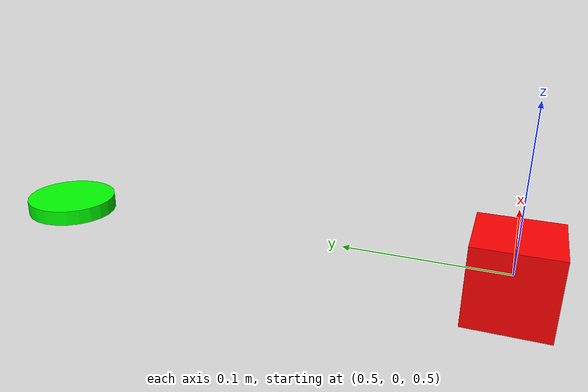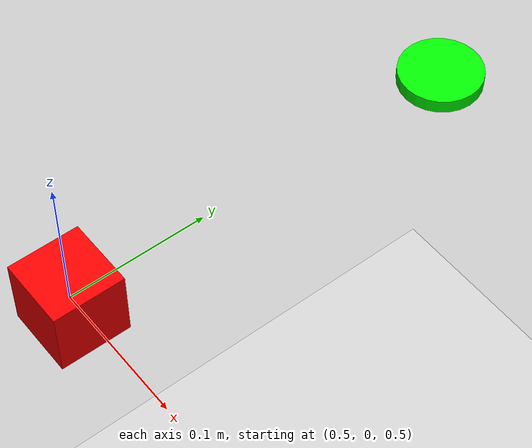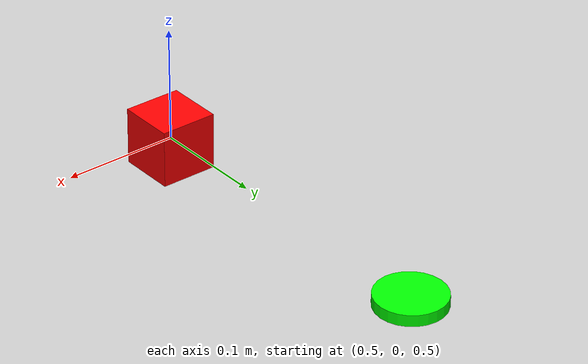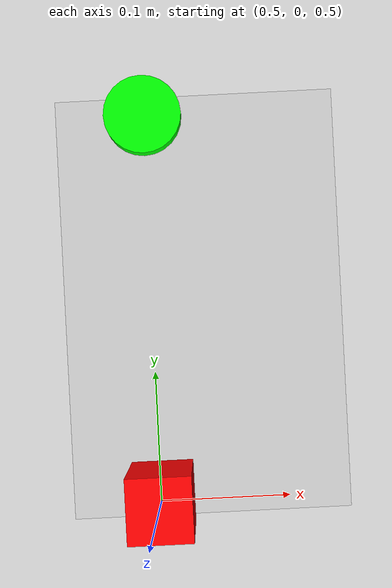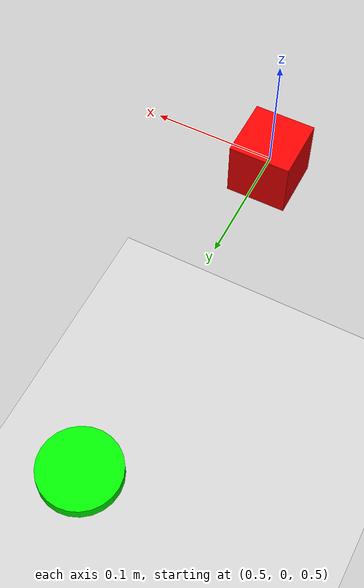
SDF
<?xml version="1.0"?>
<sdf version="1.6">
  <world name="pick_and_place_world">

    <!-- Physics -->
    <physics name="1ms" type="ignored">
      <max_step_size>0.001</max_step_size>
      <real_time_factor>1.0</real_time_factor>
    </physics>

    <!-- Lighting -->
    <light type="directional" name="sun">
      <cast_shadows>true</cast_shadows>
      <pose>0 0 10 0 0 0</pose>
      <diffuse>0.8 0.8 0.8 1</diffuse>
      <specular>0.2 0.2 0.2 1</specular>
      <direction>-0.5 0.1 -0.9</direction>
    </light>

    <!-- Ground plane -->
    <model name="ground_plane">
      <static>true</static>
      <link name="link">
        <collision name="collision">
          <geometry>
            <plane>
              <normal>0 0 1</normal>
              <size>100 100</size>
            </plane>
          </geometry>
        </collision>
        <visual name="visual">
          <geometry>
            <plane>
              <normal>0 0 1</normal>
              <size>100 100</size>
            </plane>
          </geometry>
          <material>
            <ambient>0.8 0.8 0.8 1</ambient>
            <diffuse>0.8 0.8 0.8 1</diffuse>
          </material>
        </visual>
      </link>
    </model>

    <!-- Simple cube to pick -->
    <model name="cube">
      <pose>0.5 0 0.5 0 0 0</pose>
      <link name="link">
        <collision name="collision">
          <geometry>
            <box>
              <size>0.05 0.05 0.05</size>
            </box>
          </geometry>
        </collision>
        <visual name="visual">
          <geometry>
            <box>
              <size>0.05 0.05 0.05</size>
            </box>
          </geometry>
          <material>
            <ambient>1 0 0 1</ambient>
            <diffuse>1 0 0 1</diffuse>
          </material>
        </visual>
        <inertial>
          <mass>0.1</mass>
          <inertia>
            <ixx>0.000017</ixx>
            <ixy>0</ixy>
            <ixz>0</ixz>
            <iyy>0.000017</iyy>
            <iyz>0</iyz>
            <izz>0.000017</izz>
          </inertia>
        </inertial>
      </link>
    </model>

    <!-- Target position marker -->
    <model name="target">
      <pose>0.5 0.3 0.5 0 0 0</pose>
      <static>true</static>
      <link name="link">
        <visual name="visual">
          <geometry>
            <cylinder>
              <radius>0.03</radius>
              <length>0.01</length>
            </cylinder>
          </geometry>
          <material>
            <ambient>0 1 0 1</ambient>
            <diffuse>0 1 0 1</diffuse>
          </material>
        </visual>
      </link>
    </model>

  </world>
</sdf>
